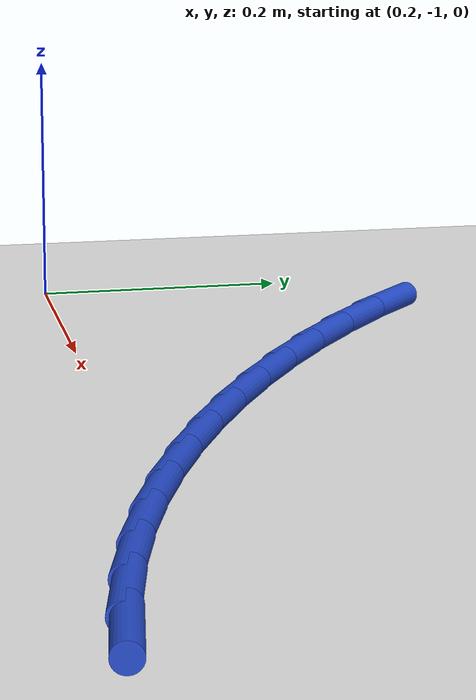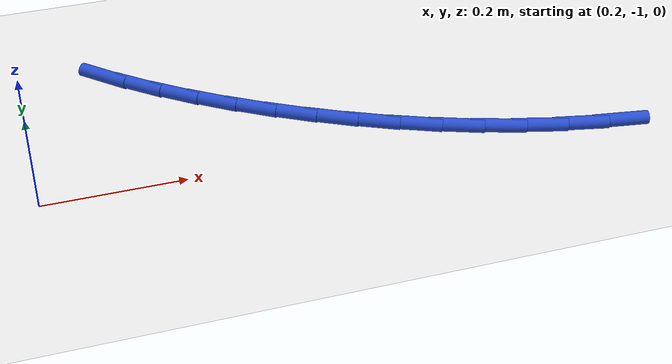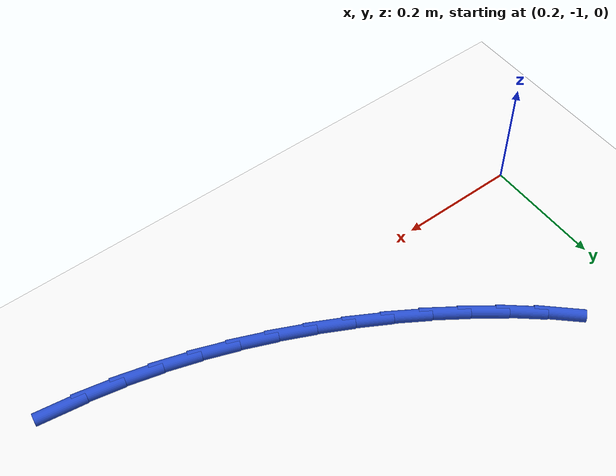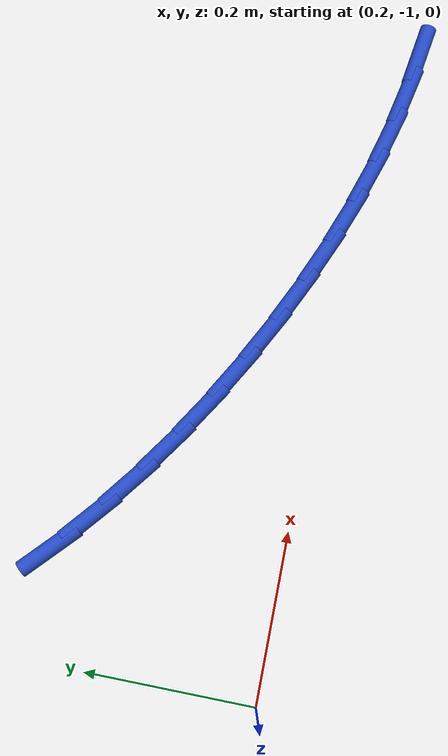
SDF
<sdf version="1.6">
 <world name="default">
  <model name="ground_plane">
   <static>1</static>
   <link name="link">
    <collision name="collision">
     <geometry><plane><normal>0 0 1</normal><size>100 100</size></plane></geometry>
     <surface><friction><ode><mu>100</mu><mu2>50</mu2></ode></friction></surface>
    </collision>
    <visual name="visual">
     <cast_shadows>0</cast_shadows>
     <geometry><plane><normal>0 0 1</normal><size>100 100</size></plane></geometry>
     <material>
      <script><uri>file://media/materials/scripts/gazebo.material</uri><name>Gazebo/WhiteGlow</name></script>
     </material>
    </visual>
   </link>
  </model>
  <model name="line">
   <link name="link_83">
    <pose>1.0173194290021095 -1.0528921049991202 0.01 0 1.57 -0.14848736448288166</pose>
    <collision name="collision">
     <geometry><cylinder><radius>0.01</radius><length>0.08</length></cylinder></geometry>
    </collision>
    <visual name="visual">
     <material>
      <script><name>Gazebo/Blue</name><uri>file://media/materials/scripts/gazebo.material</uri></script>
     </material>
     <geometry><cylinder><radius>0.01</radius><length>0.08</length></cylinder></geometry>
    </visual>
   </link>
   <link name="link_84">
    <pose>0.9591293313501387 -1.0441875423505764 0.01 0 1.57 -0.20499284971370244</pose>
    <collision name="collision">
     <geometry><cylinder><radius>0.01</radius><length>0.08</length></cylinder></geometry>
    </collision>
    <visual name="visual">
     <material>
      <script><name>Gazebo/Blue</name><uri>file://media/materials/scripts/gazebo.material</uri></script>
     </material>
     <geometry><cylinder><radius>0.01</radius><length>0.08</length></cylinder></geometry>
    </visual>
   </link>
   <link name="link_85">
    <pose>0.9014125232101959 -1.0321874469731285 0.01 0 1.57 -0.25833363959009564</pose>
    <collision name="collision">
     <geometry><cylinder><radius>0.01</radius><length>0.08</length></cylinder></geometry>
    </collision>
    <visual name="visual">
     <material>
      <script><name>Gazebo/Blue</name><uri>file://media/materials/scripts/gazebo.material</uri></script>
     </material>
     <geometry><cylinder><radius>0.01</radius><length>0.08</length></cylinder></geometry>
    </visual>
   </link>
   <link name="link_86">
    <pose>0.8442606298761988 -1.0170857423434891 0.01 0 1.57 -0.30859269037831977</pose>
    <collision name="collision">
     <geometry><cylinder><radius>0.01</radius><length>0.08</length></cylinder></geometry>
    </collision>
    <visual name="visual">
     <material>
      <script><name>Gazebo/Blue</name><uri>file://media/materials/scripts/gazebo.material</uri></script>
     </material>
     <geometry><cylinder><radius>0.01</radius><length>0.08</length></cylinder></geometry>
    </visual>
   </link>
   <link name="link_87">
    <pose>0.7877652766420615 -0.9990763519383705 0.01 0 1.57 -0.35590469248290685</pose>
    <collision name="collision">
     <geometry><cylinder><radius>0.01</radius><length>0.08</length></cylinder></geometry>
    </collision>
    <visual name="visual">
     <material>
      <script><name>Gazebo/Blue</name><uri>file://media/materials/scripts/gazebo.material</uri></script>
     </material>
     <geometry><cylinder><radius>0.01</radius><length>0.08</length></cylinder></geometry>
    </visual>
   </link>
   <link name="link_88">
    <pose>0.7320180888017017 -0.9783531992344862 0.01 0 1.57 -0.4004405132325231</pose>
    <collision name="collision">
     <geometry><cylinder><radius>0.01</radius><length>0.08</length></cylinder></geometry>
    </collision>
    <visual name="visual">
     <material>
      <script><name>Gazebo/Blue</name><uri>file://media/materials/scripts/gazebo.material</uri></script>
     </material>
     <geometry><cylinder><radius>0.01</radius><length>0.08</length></cylinder></geometry>
    </visual>
   </link>
   <link name="link_89">
    <pose>0.6771106916490338 -0.9551102077085479 0.01 0 1.57 -0.4423944513329983</pose>
    <collision name="collision">
     <geometry><cylinder><radius>0.01</radius><length>0.08</length></cylinder></geometry>
    </collision>
    <visual name="visual">
     <material>
      <script><name>Gazebo/Blue</name><uri>file://media/materials/scripts/gazebo.material</uri></script>
     </material>
     <geometry><cylinder><radius>0.01</radius><length>0.08</length></cylinder></geometry>
    </visual>
   </link>
   <link name="link_90">
    <pose>0.623134710477975 -0.9295413008372692 0.01 0 1.57 -0.48198919263483075</pose>
    <collision name="collision">
     <geometry><cylinder><radius>0.01</radius><length>0.08</length></cylinder></geometry>
    </collision>
    <visual name="visual">
     <material>
      <script><name>Gazebo/Blue</name><uri>file://media/materials/scripts/gazebo.material</uri></script>
     </material>
     <geometry><cylinder><radius>0.01</radius><length>0.08</length></cylinder></geometry>
    </visual>
   </link>
   <link name="link_91">
    <pose>0.570182181945685 -0.9018396195697634 0.01 0 1.57 -0.5208668557672442</pose>
    <collision name="collision">
     <geometry><cylinder><radius>0.01</radius><length>0.08</length></cylinder></geometry>
    </collision>
    <visual name="visual">
     <material>
      <script><name>Gazebo/Blue</name><uri>file://media/materials/scripts/gazebo.material</uri></script>
     </material>
     <geometry><cylinder><radius>0.01</radius><length>0.08</length></cylinder></geometry>
    </visual>
   </link>
   <link name="link_92">
    <pose>0.518384840414488 -0.8721227887505171 0.01 0 1.57 -0.561840592474189</pose>
    <collision name="collision">
     <geometry><cylinder><radius>0.01</radius><length>0.08</length></cylinder></geometry>
    </collision>
    <visual name="visual">
     <material>
      <script><name>Gazebo/Blue</name><uri>file://media/materials/scripts/gazebo.material</uri></script>
     </material>
     <geometry><cylinder><radius>0.01</radius><length>0.08</length></cylinder></geometry>
    </visual>
   </link>
   <link name="link_93">
    <pose>0.46794661831937345 -0.8403710923579008 0.01 0 1.57 -0.6053989779946012</pose>
    <collision name="collision">
     <geometry><cylinder><radius>0.01</radius><length>0.08</length></cylinder></geometry>
    </collision>
    <visual name="visual">
     <material>
      <script><name>Gazebo/Blue</name><uri>file://media/materials/scripts/gazebo.material</uri></script>
     </material>
     <geometry><cylinder><radius>0.01</radius><length>0.08</length></cylinder></geometry>
    </visual>
   </link>
   <link name="link_94">
    <pose>0.41907909782382513 -0.8065502624536255 0.01 0 1.57 -0.6517451056131068</pose>
    <collision name="collision">
     <geometry><cylinder><radius>0.01</radius><length>0.08</length></cylinder></geometry>
    </collision>
    <visual name="visual">
     <material>
      <script><name>Gazebo/Blue</name><uri>file://media/materials/scripts/gazebo.material</uri></script>
     </material>
     <geometry><cylinder><radius>0.01</radius><length>0.08</length></cylinder></geometry>
    </visual>
   </link>
   <link name="link_95">
    <pose>0.37199386109132393 -0.7706260310994003 0.01 0 1.57 -0.7010623788192157</pose>
    <collision name="collision">
     <geometry><cylinder><radius>0.01</radius><length>0.08</length></cylinder></geometry>
    </collision>
    <visual name="visual">
     <material>
      <script><name>Gazebo/Blue</name><uri>file://media/materials/scripts/gazebo.material</uri></script>
     </material>
     <geometry><cylinder><radius>0.01</radius><length>0.08</length></cylinder></geometry>
    </visual>
   </link>
   <link name="link_96">
    <pose>0.32690249028535334 -0.7325641303569366 0.01 0 1.57 -0.7535021955508697</pose>
    <collision name="collision">
     <geometry><cylinder><radius>0.01</radius><length>0.08</length></cylinder></geometry>
    </collision>
    <visual name="visual">
     <material>
      <script><name>Gazebo/Blue</name><uri>file://media/materials/scripts/gazebo.material</uri></script>
     </material>
     <geometry><cylinder><radius>0.01</radius><length>0.08</length></cylinder></geometry>
    </visual>
   </link>
  </model>
 </world>
</sdf>
